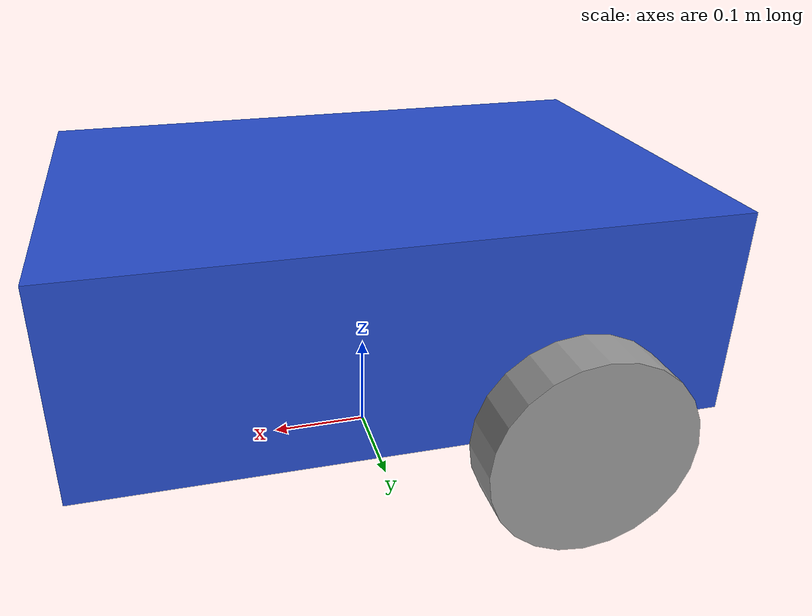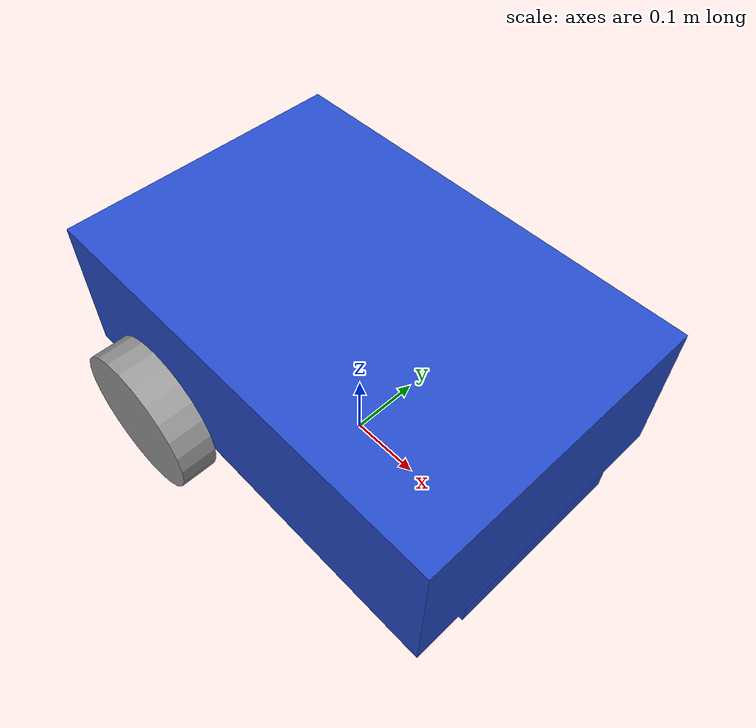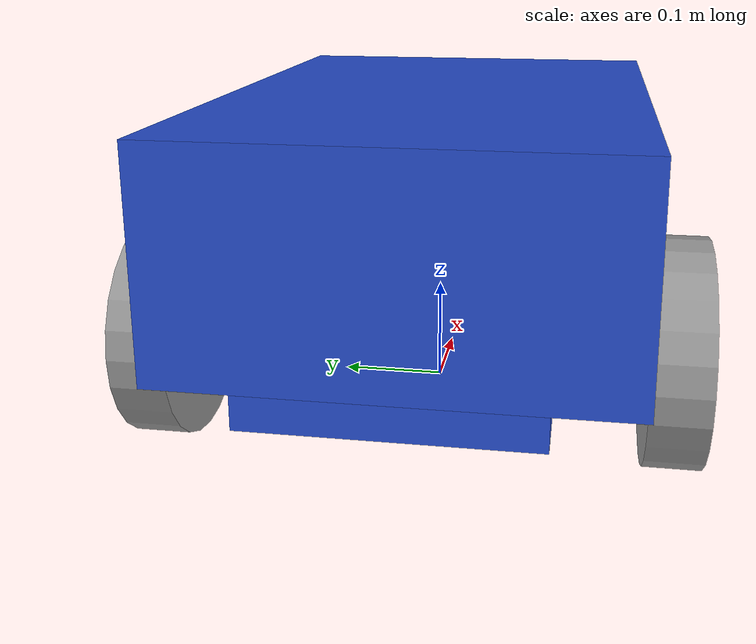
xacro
<?xml version="1.0"?>
<robot xmlns:xacro="http://www.ros.org/wiki/xacro">

    <xacro:property name="base_length" value="0.6" />
    <xacro:property name="base_width" value="0.4" />
    <xacro:property name="base_height" value="0.2" />
    <xacro:property name="wheel_radius" value="0.1" />
    <xacro:property name="wheel_length" value="0.05" />
    <xacro:property name="base_balance_back_length" value="0.1" />
    <xacro:property name="base_balance_back_width" value="0.25" />
    <xacro:property name="base_balance_back_height" value="0.03" />
    <xacro:property name="base_balance_front_length" value="0.05" />
    <xacro:property name="base_balance_front_width" value="0.25" />
    <xacro:property name="base_balance_front_height" value="0.03" />

    <link name="base_footprint" />

    <link name="base_link">
        <visual>
            <geometry>
                <box size="${base_length} ${base_width} ${base_height}" />
            </geometry>
            <origin xyz="0 0 ${base_height / 2.0}" rpy="0 0 0" />
            <material name="blue" />
        </visual>
        <collision>
            <geometry>
                <box size="${base_length} ${base_width} ${base_height}" />
            </geometry>
            <origin xyz="0 0 ${base_height / 2.0}" rpy="0 0 0" />
        </collision>
        <xacro:box_inertia m="5.0" x="${base_length}" y="${base_width}" z="${base_height}"
                           o_xyz="0 0 ${base_height / 2.0}" o_rpy="0 0 0" />
    </link>

    <xacro:macro name="wheel_link" params="prefix">
        <link name="${prefix}_wheel_link">
            <visual>
                <geometry>
                    <cylinder radius="${wheel_radius}" length="${wheel_length}" />
                </geometry>
                <origin xyz="0 0 0" rpy="${pi / 2.0} 0 0" />
                <material name="grey" />
            </visual>
            <collision>
                <geometry>
                    <sphere radius="${wheel_radius}" />
                </geometry>
                <origin xyz="0 0 0" rpy="0 0 0" />
            </collision>
            <xacro:cylinder_inertia m="1.0" r="${wheel_radius}" l="${wheel_length}"
                                    o_xyz="0 0 0" o_rpy="${pi / 2.0} 0 0" />
        </link>
    </xacro:macro>

    <xacro:wheel_link prefix="right" />
    <xacro:wheel_link prefix="left" />

    <link name="caster_wheel_link">
        <visual>
            <geometry>
                <sphere radius="${wheel_radius / 2.0}" />
            </geometry>
            <origin xyz="0 0 0" rpy="0 0 0" />
            <material name="grey" />
        </visual>
        <collision>
            <geometry>
                <sphere radius="${wheel_radius / 2.0}" />
            </geometry>
            <origin xyz="0 0 0" rpy="0 0 0" />
        </collision>
        <xacro:sphere_inertia m="1.5" r="${wheel_radius / 2.0}"
                              o_xyz="0 0 0" o_rpy="0 0 0" />
    </link>

    <link name="base_balance_back_link">
        <visual>
            <geometry>
                <box size="${base_balance_back_length} ${base_balance_back_width} ${base_balance_back_height}" />
            </geometry>
            <origin xyz="${base_balance_back_length / 2.0} 0 ${ - base_balance_back_height / 2.0}" rpy="0 0 0" />
            <material name="blue" />
        </visual>
        <collision>
            <geometry>
                <box size="${base_balance_back_length} ${base_balance_back_width} ${base_balance_back_height}" />
            </geometry>
            <origin xyz="${base_balance_back_length / 2.0} 0 ${ - base_balance_back_height / 2.0}" rpy="0 0 0" />
        </collision>
        <xacro:box_inertia m="3.2" x="${base_balance_back_length}" y="${base_balance_back_width}" z="${base_balance_back_height}"
                           o_xyz="${base_balance_back_length / 2.0} 0 ${ - base_balance_back_height / 2.0}" o_rpy="0 0 0" />
    </link>

    <link name="base_balance_front_link">
        <visual>
            <geometry>
                <box size="${base_balance_front_length} ${base_balance_front_width} ${base_balance_front_height}" />
            </geometry>
            <origin xyz="${- base_balance_front_length / 2.0} 0 ${- base_balance_front_height / 2.0}" rpy="0 0 0" />
            <material name="blue" />
        </visual>
        <collision>
            <geometry>
                <box size="${base_balance_front_length} ${base_balance_front_width} ${base_balance_front_height}" />
            </geometry>
            <origin xyz="${- base_balance_front_length / 2.0} 0 ${- base_balance_front_height / 2.0}" rpy="0 0 0" />
        </collision>
        <xacro:box_inertia m="2.9" x="${base_balance_front_length}" y="${base_balance_front_width}" z="${base_balance_front_height}"
                           o_xyz="${- base_balance_front_length / 2.0} 0 ${- base_balance_front_height / 2.0}" o_rpy="0 0 0" />
    </link>

    <joint name="base_joint" type="fixed">
        <parent link="base_footprint" />
        <child link="base_link" />
        <origin xyz="0 0 ${wheel_radius}" rpy="0 0 0"/>
    </joint>

    <joint name="base_base_balance_back_link" type="fixed">
        <parent link="base_link" />
        <child link="base_balance_back_link" />
        <origin xyz="${- base_width / 2.0 - base_balance_back_length} 0 0" rpy="0 0 0"/>
    </joint>

    <joint name="base_base_balance_front_link" type="fixed">
        <parent link="base_link" />
        <child link="base_balance_front_link" />
        <origin xyz="${base_length / 2.0} 0 0" rpy="0 0 0"/>
    </joint>

    <joint name="base_right_wheel_joint" type="continuous">
        <parent link="base_link" />
        <child link="right_wheel_link" />
        <origin xyz="${-base_length / 4.0} ${-(base_width + wheel_length) / 2.0} 0" rpy="0 0 0" />
        <axis xyz="0 1 0" />
    </joint>

    <joint name="base_left_wheel_joint" type="continuous">
        <parent link="base_link" />
        <child link="left_wheel_link" />
        <origin xyz="${-base_length / 4.0} ${(base_width + wheel_length) / 2.0} 0" rpy="0 0 0" />
        <axis xyz="0 1 0" />
    </joint>

    <joint name="base_caster_wheel_joint" type="fixed">
        <parent link="base_link" />
        <child link="caster_wheel_link" />
        <origin xyz="${base_length / 3.0} 0 ${-wheel_radius / 2.0}" rpy="0 0 0" />
    </joint>

</robot>
